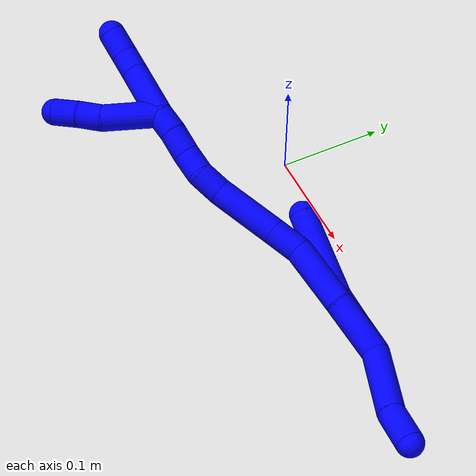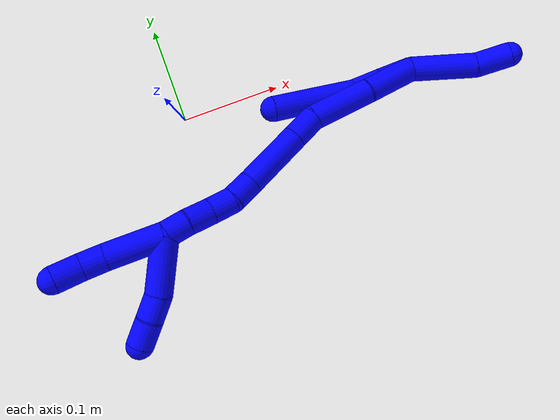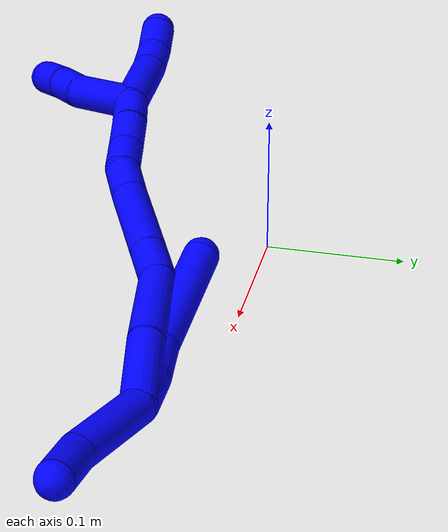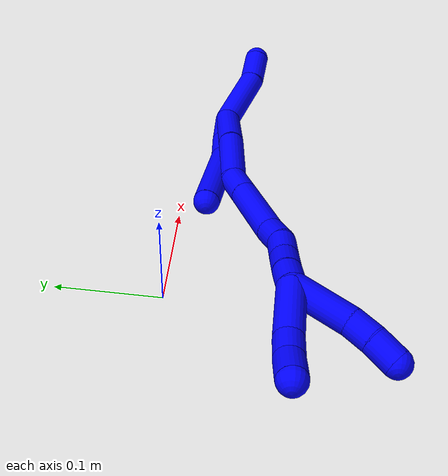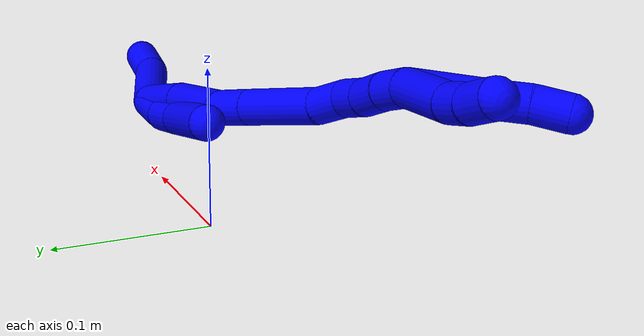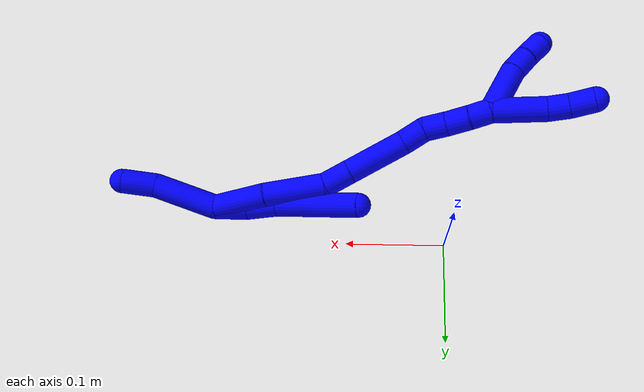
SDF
<sdf version="1.7">
 <world name="default">
  <plugin name="TubeGeneratorPlugin" filename="libtube_generator_plugin.so"/>
  <model name="photoneo_s_sensor">
   <static>1</static>
   <pose>0 0 2 1.57079 1.57079 3.14159</pose>
   <link name="link">
    <inertial><mass>0.1</mass></inertial>
    <sensor name="sensor" type="depth">
     <update_rate>30</update_rate>
     <camera>
      <horizontal_fov>1.22</horizontal_fov>
      <image><width>1920</width><height>1200</height><format>B8G8R8</format></image>
      <clip><near>0.1</near><far>4</far></clip>
      <depth_camera><output>points</output></depth_camera>
     </camera>
     <plugin name="camera_plugin" filename="libgazebo_ros_depth_camera.so">
      <baseline>0.2</baseline>
      <alwaysOn>1</alwaysOn>
      <updateRate>0.0</updateRate>
      <cameraName>camera_ir</cameraName>
      <imageTopicName>/camera/color/image_raw</imageTopicName>
      <cameraInfoTopicName>/camera/color/camera_info</cameraInfoTopicName>
      <depthImageTopicName>/camera/depth/image_raw</depthImageTopicName>
      <depthImageCameraInfoTopicName>/camera/depth/camera_info</depthImageCameraInfoTopicName>
      <pointCloudTopicName>/camera/depth/points</pointCloudTopicName>
      <frameName>fr_optical</frameName>
      <pointCloudCutoff>0.1</pointCloudCutoff>
      <pointCloudCutoffMax>2.0</pointCloudCutoffMax>
      <distortionK1>0</distortionK1>
      <distortionK2>0</distortionK2>
      <distortionK3>0</distortionK3>
      <distortionT1>0</distortionT1>
      <distortionT2>0</distortionT2>
      <CxPrime>0</CxPrime>
      <Cx>0</Cx>
      <Cy>0</Cy>
      <focalLength>0</focalLength>
      <hackBaseline>0</hackBaseline>
     </plugin>
    </sensor>
   </link>
  </model>
  <gravity>0 0 -9.8</gravity>
  <magnetic_field>6e-06 2.3e-05 -4.2e-05</magnetic_field>
  <atmosphere type="adiabatic"/>
  <physics name="default_physics" default="0" type="ode">
   <max_step_size>0.003</max_step_size>
   <real_time_factor>1</real_time_factor>
   <real_time_update_rate>1000</real_time_update_rate>
   <max_contacts>10000</max_contacts>
   <ode>
    <solver>
     <type>quick</type>
     <iters>100</iters>
     <sor>1.3</sor>
     <use_dynamic_moi_rescaling>0</use_dynamic_moi_rescaling>
    </solver>
    <constraints>
     <contact_max_correcting_vel>0</contact_max_correcting_vel>
     <contact_surface_layer>0.001</contact_surface_layer>
     <cfm>0</cfm>
     <erp>0.2</erp>
    </constraints>
   </ode>
  </physics>
  <scene><ambient>0.4 0.4 0.4 1</ambient><background>0.7 0.7 0.7 1</background><shadows>0</shadows></scene>
  <audio><device>default</device></audio>
  <spherical_coordinates>
   <surface_model>EARTH_WGS84</surface_model>
   <latitude_deg>0</latitude_deg>
   <longitude_deg>0</longitude_deg>
   <elevation>0</elevation>
   <heading_deg>0</heading_deg>
  </spherical_coordinates>
  <model name="bin">
   <static>1</static>
   <link name="bottom">
    <collision name="collision-bottom">
     <pose>0 0 -0.01 0 -0 0</pose>
     <geometry><box><size>0.8 0.6 0.02</size></box></geometry>
     <surface>
      <friction><ode><mu>100</mu><mu2>100</mu2></ode></friction>
      <contact><collide_bitmask>65535</collide_bitmask></contact>
     </surface>
    </collision>
   </link>
   <link name="west_wall">
    <collision name="collision-west_wall">
     <pose>-0.41 0 0.1 0 -0 0</pose>
     <geometry><box><size>0.02 0.6 0.2</size></box></geometry>
     <surface>
      <friction><ode><mu>100</mu><mu2>100</mu2></ode></friction>
      <contact><collide_bitmask>65535</collide_bitmask></contact>
     </surface>
    </collision>
   </link>
   <link name="east_wall">
    <collision name="collision-east_wall">
     <pose>0.41 0 0.1 0 -0 0</pose>
     <geometry><box><size>0.02 0.6 0.2</size></box></geometry>
     <surface>
      <friction><ode><mu>100</mu><mu2>100</mu2></ode></friction>
      <contact><collide_bitmask>65535</collide_bitmask></contact>
     </surface>
    </collision>
   </link>
   <link name="south_wall">
    <collision name="collision-south_wall">
     <pose>0 -0.31 0.1 0 -0 0</pose>
     <geometry><box><size>0.8 0.02 0.2</size></box></geometry>
     <surface>
      <friction><ode><mu>100</mu><mu2>100</mu2></ode></friction>
      <contact><collide_bitmask>65535</collide_bitmask></contact>
     </surface>
    </collision>
   </link>
   <link name="north_wall">
    <collision name="collision-north_wall">
     <pose>0 0.31 0.1 0 -0 0</pose>
     <geometry><box><size>0.8 0.02 0.2</size></box></geometry>
     <surface>
      <friction><ode><mu>100</mu><mu2>100</mu2></ode></friction>
      <contact><collide_bitmask>65535</collide_bitmask></contact>
     </surface>
    </collision>
   </link>
  </model>
  <model name="1">
   <static>0</static>
   <link name="1">
    <collision name="collision-cylinder-e_1_2_8">
     <pose>0.000954 -0.00063 -0.01635 3.10307 0.058241 1.97291</pose>
     <geometry><cylinder><radius>0.0125</radius><length>0.032779</length></cylinder></geometry>
     <surface>
      <friction><ode><mu>1.16</mu><mu2>1.16</mu2><slip1>0</slip1><slip2>0</slip2></ode></friction>
      <contact><ode><kp>1e+06</kp><kd>1</kd><max_vel>0</max_vel><min_depth>0.001</min_depth></ode></contact>
     </surface>
    </collision>
    <visual name="visual-cylinder-e_1_2_8">
     <pose>0.000954 -0.00063 -0.01635 3.10307 0.058241 1.97291</pose>
     <geometry><cylinder><radius>0.0125</radius><length>0.032779</length></cylinder></geometry>
     <material><ambient>0 0 1 1</ambient></material>
    </visual>
    <collision name="collision-cylinder-e_2_8_9">
     <pose>0.000517 0.00036 -0.048124 -3.03693 -0.089416 1.41377</pose>
     <geometry><cylinder><radius>0.0125</radius><length>0.031143</length></cylinder></geometry>
     <surface>
      <friction><ode><mu>1.16</mu><mu2>1.16</mu2><slip1>0</slip1><slip2>0</slip2></ode></friction>
      <contact><ode><kp>1e+06</kp><kd>1</kd><max_vel>0</max_vel><min_depth>0.001</min_depth></ode></contact>
     </surface>
    </collision>
    <visual name="visual-cylinder-e_2_8_9">
     <pose>0.000517 0.00036 -0.048124 -3.03693 -0.089416 1.41377</pose>
     <geometry><cylinder><radius>0.0125</radius><length>0.031143</length></cylinder></geometry>
     <material><ambient>0 0 1 1</ambient></material>
    </visual>
    <collision name="collision-cylinder-e_3_9_6">
     <pose>-0.000391 0.012539 -0.105269 -2.89373 0.011198 -0.089831</pose>
     <geometry><cylinder><radius>0.0125</radius><length>0.086078</length></cylinder></geometry>
     <surface>
      <friction><ode><mu>1.16</mu><mu2>1.16</mu2><slip1>0</slip1><slip2>0</slip2></ode></friction>
      <contact><ode><kp>1e+06</kp><kd>1</kd><max_vel>0</max_vel><min_depth>0.001</min_depth></ode></contact>
     </surface>
    </collision>
    <visual name="visual-cylinder-e_3_9_6">
     <pose>-0.000391 0.012539 -0.105269 -2.89373 0.011198 -0.089831</pose>
     <geometry><cylinder><radius>0.0125</radius><length>0.086078</length></cylinder></geometry>
     <material><ambient>0 0 1 1</ambient></material>
    </visual>
    <collision name="collision-cylinder-e_1_2_10">
     <pose>-0.011989 -0.002285 0.030453 0.074899 -0.374112 -0.014183</pose>
     <geometry><cylinder><radius>0.0125</radius><length>0.065615</length></cylinder></geometry>
     <surface>
      <friction><ode><mu>1.16</mu><mu2>1.16</mu2><slip1>0</slip1><slip2>0</slip2></ode></friction>
      <contact><ode><kp>1e+06</kp><kd>1</kd><max_vel>0</max_vel><min_depth>0.001</min_depth></ode></contact>
     </surface>
    </collision>
    <visual name="visual-cylinder-e_1_2_10">
     <pose>-0.011989 -0.002285 0.030453 0.074899 -0.374112 -0.014183</pose>
     <geometry><cylinder><radius>0.0125</radius><length>0.065615</length></cylinder></geometry>
     <material><ambient>0 0 1 1</ambient></material>
    </visual>
    <collision name="collision-cylinder-e_2_10_5">
     <pose>-0.027182 -0.002819 0.077706 -0.103861 -0.187399 0.009769</pose>
     <geometry><cylinder><radius>0.0125</radius><length>0.034385</length></cylinder></geometry>
     <surface>
      <friction><ode><mu>1.16</mu><mu2>1.16</mu2><slip1>0</slip1><slip2>0</slip2></ode></friction>
      <contact><ode><kp>1e+06</kp><kd>1</kd><max_vel>0</max_vel><min_depth>0.001</min_depth></ode></contact>
     </surface>
    </collision>
    <visual name="visual-cylinder-e_2_10_5">
     <pose>-0.027182 -0.002819 0.077706 -0.103861 -0.187399 0.009769</pose>
     <geometry><cylinder><radius>0.0125</radius><length>0.034385</length></cylinder></geometry>
     <material><ambient>0 0 1 1</ambient></material>
    </visual>
    <collision name="collision-cylinder-e_1_2_11">
     <pose>-0.00582 0.003915 -0.026262 -2.9936 -0.215783 1.94118</pose>
     <geometry><cylinder><radius>0.0125</radius><length>0.054365</length></cylinder></geometry>
     <surface>
      <friction><ode><mu>1.16</mu><mu2>1.16</mu2><slip1>0</slip1><slip2>0</slip2></ode></friction>
      <contact><ode><kp>1e+06</kp><kd>1</kd><max_vel>0</max_vel><min_depth>0.001</min_depth></ode></contact>
     </surface>
    </collision>
    <visual name="visual-cylinder-e_1_2_11">
     <pose>-0.00582 0.003915 -0.026262 -2.9936 -0.215783 1.94118</pose>
     <geometry><cylinder><radius>0.0125</radius><length>0.054365</length></cylinder></geometry>
     <material><ambient>0 0 1 1</ambient></material>
    </visual>
    <collision name="collision-cylinder-e_2_11_12">
     <pose>-0.015819 0.009716 -0.083142 -3.08008 -0.135402 2.28964</pose>
     <geometry><cylinder><radius>0.0125</radius><length>0.061918</length></cylinder></geometry>
     <surface>
      <friction><ode><mu>1.16</mu><mu2>1.16</mu2><slip1>0</slip1><slip2>0</slip2></ode></friction>
      <contact><ode><kp>1e+06</kp><kd>1</kd><max_vel>0</max_vel><min_depth>0.001</min_depth></ode></contact>
     </surface>
    </collision>
    <visual name="visual-cylinder-e_2_11_12">
     <pose>-0.015819 0.009716 -0.083142 -3.08008 -0.135402 2.28964</pose>
     <geometry><cylinder><radius>0.0125</radius><length>0.061918</length></cylinder></geometry>
     <material><ambient>0 0 1 1</ambient></material>
    </visual>
    <collision name="collision-cylinder-e_3_12_13">
     <pose>-0.026281 0.011031 -0.126501 3.09676 -0.457695 -2.9497</pose>
     <geometry><cylinder><radius>0.0125</radius><length>0.028435</length></cylinder></geometry>
     <surface>
      <friction><ode><mu>1.16</mu><mu2>1.16</mu2><slip1>0</slip1><slip2>0</slip2></ode></friction>
      <contact><ode><kp>1e+06</kp><kd>1</kd><max_vel>0</max_vel><min_depth>0.001</min_depth></ode></contact>
     </surface>
    </collision>
    <visual name="visual-cylinder-e_3_12_13">
     <pose>-0.026281 0.011031 -0.126501 3.09676 -0.457695 -2.9497</pose>
     <geometry><cylinder><radius>0.0125</radius><length>0.028435</length></cylinder></geometry>
     <material><ambient>0 0 1 1</ambient></material>
    </visual>
    <collision name="collision-cylinder-e_4_13_14">
     <pose>-0.046221 0.008956 -0.167072 3.08765 -0.455655 -2.90991</pose>
     <geometry><cylinder><radius>0.0125</radius><length>0.062073</length></cylinder></geometry>
     <surface>
      <friction><ode><mu>1.16</mu><mu2>1.16</mu2><slip1>0</slip1><slip2>0</slip2></ode></friction>
      <contact><ode><kp>1e+06</kp><kd>1</kd><max_vel>0</max_vel><min_depth>0.001</min_depth></ode></contact>
     </surface>
    </collision>
    <visual name="visual-cylinder-e_4_13_14">
     <pose>-0.046221 0.008956 -0.167072 3.08765 -0.455655 -2.90991</pose>
     <geometry><cylinder><radius>0.0125</radius><length>0.062073</length></cylinder></geometry>
     <material><ambient>0 0 1 1</ambient></material>
    </visual>
    <collision name="collision-cylinder-e_5_14_15">
     <pose>-0.066145 0.008979 -0.205281 -2.99569 -0.538368 2.62368</pose>
     <geometry><cylinder><radius>0.0125</radius><length>0.024441</length></cylinder></geometry>
     <surface>
      <friction><ode><mu>1.16</mu><mu2>1.16</mu2><slip1>0</slip1><slip2>0</slip2></ode></friction>
      <contact><ode><kp>1e+06</kp><kd>1</kd><max_vel>0</max_vel><min_depth>0.001</min_depth></ode></contact>
     </surface>
    </collision>
    <visual name="visual-cylinder-e_5_14_15">
     <pose>-0.066145 0.008979 -0.205281 -2.99569 -0.538368 2.62368</pose>
     <geometry><cylinder><radius>0.0125</radius><length>0.024441</length></cylinder></geometry>
     <material><ambient>0 0 1 1</ambient></material>
    </visual>
    <collision name="collision-cylinder-e_6_15_16">
     <pose>-0.074735 0.012284 -0.226759 -2.9826 -0.203967 1.81869</pose>
     <geometry><cylinder><radius>0.0125</radius><length>0.022953</length></cylinder></geometry>
     <surface>
      <friction><ode><mu>1.16</mu><mu2>1.16</mu2><slip1>0</slip1><slip2>0</slip2></ode></friction>
      <contact><ode><kp>1e+06</kp><kd>1</kd><max_vel>0</max_vel><min_depth>0.001</min_depth></ode></contact>
     </surface>
    </collision>
    <visual name="visual-cylinder-e_6_15_16">
     <pose>-0.074735 0.012284 -0.226759 -2.9826 -0.203967 1.81869</pose>
     <geometry><cylinder><radius>0.0125</radius><length>0.022953</length></cylinder></geometry>
     <material><ambient>0 0 1 1</ambient></material>
    </visual>
    <collision name="collision-cylinder-e_7_16_17">
     <pose>-0.080095 0.017443 -0.249109 -2.84978 -0.252756 1.42583</pose>
     <geometry><cylinder><radius>0.0125</radius><length>0.024271</length></cylinder></geometry>
     <surface>
      <friction><ode><mu>1.16</mu><mu2>1.16</mu2><slip1>0</slip1><slip2>0</slip2></ode></friction>
      <contact><ode><kp>1e+06</kp><kd>1</kd><max_vel>0</max_vel><min_depth>0.001</min_depth></ode></contact>
     </surface>
    </collision>
    <visual name="visual-cylinder-e_7_16_17">
     <pose>-0.080095 0.017443 -0.249109 -2.84978 -0.252756 1.42583</pose>
     <geometry><cylinder><radius>0.0125</radius><length>0.024271</length></cylinder></geometry>
     <material><ambient>0 0 1 1</ambient></material>
    </visual>
    <collision name="collision-cylinder-e_8_17_1">
     <pose>-0.0861 0.022703 -0.270544 -2.95906 -0.27939 1.98762</pose>
     <geometry><cylinder><radius>0.0125</radius><length>0.021544</length></cylinder></geometry>
     <surface>
      <friction><ode><mu>1.16</mu><mu2>1.16</mu2><slip1>0</slip1><slip2>0</slip2></ode></friction>
      <contact><ode><kp>1e+06</kp><kd>1</kd><max_vel>0</max_vel><min_depth>0.001</min_depth></ode></contact>
     </surface>
    </collision>
    <visual name="visual-cylinder-e_8_17_1">
     <pose>-0.0861 0.022703 -0.270544 -2.95906 -0.27939 1.98762</pose>
     <geometry><cylinder><radius>0.0125</radius><length>0.021544</length></cylinder></geometry>
     <material><ambient>0 0 1 1</ambient></material>
    </visual>
    <collision name="collision-cylinder-e_1_1_18">
     <pose>-0.107405 0.010255 -0.293631 2.30401 -0.760191 -1.46293</pose>
     <geometry><cylinder><radius>0.0125</radius><length>0.053216</length></cylinder></geometry>
     <surface>
      <friction><ode><mu>1.16</mu><mu2>1.16</mu2><slip1>0</slip1><slip2>0</slip2></ode></friction>
      <contact><ode><kp>1e+06</kp><kd>1</kd><max_vel>0</max_vel><min_depth>0.001</min_depth></ode></contact>
     </surface>
    </collision>
    <visual name="visual-cylinder-e_1_1_18">
     <pose>-0.107405 0.010255 -0.293631 2.30401 -0.760191 -1.46293</pose>
     <geometry><cylinder><radius>0.0125</radius><length>0.053216</length></cylinder></geometry>
     <material><ambient>0 0 1 1</ambient></material>
    </visual>
    <collision name="collision-cylinder-e_2_18_19">
     <pose>-0.132723 -0.008648 -0.3141 2.59761 -0.66869 -1.78863</pose>
     <geometry><cylinder><radius>0.0125</radius><length>0.022531</length></cylinder></geometry>
     <surface>
      <friction><ode><mu>1.16</mu><mu2>1.16</mu2><slip1>0</slip1><slip2>0</slip2></ode></friction>
      <contact><ode><kp>1e+06</kp><kd>1</kd><max_vel>0</max_vel><min_depth>0.001</min_depth></ode></contact>
     </surface>
    </collision>
    <visual name="visual-cylinder-e_2_18_19">
     <pose>-0.132723 -0.008648 -0.3141 2.59761 -0.66869 -1.78863</pose>
     <geometry><cylinder><radius>0.0125</radius><length>0.022531</length></cylinder></geometry>
     <material><ambient>0 0 1 1</ambient></material>
    </visual>
    <collision name="collision-cylinder-e_3_19_4">
     <pose>-0.146158 -0.019281 -0.329954 2.51051 -0.560857 -1.44588</pose>
     <geometry><cylinder><radius>0.0125</radius><length>0.024253</length></cylinder></geometry>
     <surface>
      <friction><ode><mu>1.16</mu><mu2>1.16</mu2><slip1>0</slip1><slip2>0</slip2></ode></friction>
      <contact><ode><kp>1e+06</kp><kd>1</kd><max_vel>0</max_vel><min_depth>0.001</min_depth></ode></contact>
     </surface>
    </collision>
    <visual name="visual-cylinder-e_3_19_4">
     <pose>-0.146158 -0.019281 -0.329954 2.51051 -0.560857 -1.44588</pose>
     <geometry><cylinder><radius>0.0125</radius><length>0.024253</length></cylinder></geometry>
     <material><ambient>0 0 1 1</ambient></material>
    </visual>
    <collision name="collision-cylinder-e_1_1_20">
     <pose>-0.088882 0.026354 -0.307326 -3.07508 0.007072 -0.211799</pose>
     <geometry><cylinder><radius>0.0125</radius><length>0.053319</length></cylinder></geometry>
     <surface>
      <friction><ode><mu>1.16</mu><mu2>1.16</mu2><slip1>0</slip1><slip2>0</slip2></ode></friction>
      <contact><ode><kp>1e+06</kp><kd>1</kd><max_vel>0</max_vel><min_depth>0.001</min_depth></ode></contact>
     </surface>
    </collision>
    <visual name="visual-cylinder-e_1_1_20">
     <pose>-0.088882 0.026354 -0.307326 -3.07508 0.007072 -0.211799</pose>
     <geometry><cylinder><radius>0.0125</radius><length>0.053319</length></cylinder></geometry>
     <material><ambient>0 0 1 1</ambient></material>
    </visual>
    <collision name="collision-cylinder-e_2_20_21">
     <pose>-0.089877 0.029942 -0.344529 -2.97199 -0.109566 1.14587</pose>
     <geometry><cylinder><radius>0.0125</radius><length>0.021645</length></cylinder></geometry>
     <surface>
      <friction><ode><mu>1.16</mu><mu2>1.16</mu2><slip1>0</slip1><slip2>0</slip2></ode></friction>
      <contact><ode><kp>1e+06</kp><kd>1</kd><max_vel>0</max_vel><min_depth>0.001</min_depth></ode></contact>
     </surface>
    </collision>
    <visual name="visual-cylinder-e_2_20_21">
     <pose>-0.089877 0.029942 -0.344529 -2.97199 -0.109566 1.14587</pose>
     <geometry><cylinder><radius>0.0125</radius><length>0.021645</length></cylinder></geometry>
     <material><ambient>0 0 1 1</ambient></material>
    </visual>
    <collision name="collision-cylinder-e_3_21_3">
     <pose>-0.093822 0.035028 -0.366895 -2.87046 -0.22246 1.37222</pose>
     <geometry><cylinder><radius>0.0125</radius><length>0.025037</length></cylinder></geometry>
     <surface>
      <friction><ode><mu>1.16</mu><mu2>1.16</mu2><slip1>0</slip1><slip2>0</slip2></ode></friction>
      <contact><ode><kp>1e+06</kp><kd>1</kd><max_vel>0</max_vel><min_depth>0.001</min_depth></ode></contact>
     </surface>
    </collision>
    <visual name="visual-cylinder-e_3_21_3">
     <pose>-0.093822 0.035028 -0.366895 -2.87046 -0.22246 1.37222</pose>
     <geometry><cylinder><radius>0.0125</radius><length>0.025037</length></cylinder></geometry>
     <material><ambient>0 0 1 1</ambient></material>
    </visual>
    <collision name="collision-sphere-3">
     <pose>-0.096584 0.038298 -0.378659 0 -0 0</pose>
     <geometry><sphere><radius>0.0125</radius></sphere></geometry>
     <surface>
      <friction><ode><mu>1.16</mu><mu2>1.16</mu2><slip1>0</slip1><slip2>0</slip2></ode></friction>
      <contact><ode><kp>1e+06</kp><kd>1</kd><max_vel>0</max_vel><min_depth>0.001</min_depth></ode></contact>
     </surface>
    </collision>
    <visual name="visual-sphere-3">
     <pose>-0.096584 0.038298 -0.378659 0 -0 0</pose>
     <geometry><sphere><radius>0.0125</radius></sphere></geometry>
     <material><ambient>0 0 1 1</ambient></material>
    </visual>
    <collision name="collision-sphere-21">
     <pose>-0.09106 0.031757 -0.355132 0 -0 0</pose>
     <geometry><sphere><radius>0.0125</radius></sphere></geometry>
     <surface>
      <friction><ode><mu>1.16</mu><mu2>1.16</mu2><slip1>0</slip1><slip2>0</slip2></ode></friction>
      <contact><ode><kp>1e+06</kp><kd>1</kd><max_vel>0</max_vel><min_depth>0.001</min_depth></ode></contact>
     </surface>
    </collision>
    <visual name="visual-sphere-21">
     <pose>-0.09106 0.031757 -0.355132 0 -0 0</pose>
     <geometry><sphere><radius>0.0125</radius></sphere></geometry>
     <material><ambient>0 0 1 1</ambient></material>
    </visual>
    <collision name="collision-sphere-20">
     <pose>-0.088693 0.028126 -0.333926 0 -0 0</pose>
     <geometry><sphere><radius>0.0125</radius></sphere></geometry>
     <surface>
      <friction><ode><mu>1.16</mu><mu2>1.16</mu2><slip1>0</slip1><slip2>0</slip2></ode></friction>
      <contact><ode><kp>1e+06</kp><kd>1</kd><max_vel>0</max_vel><min_depth>0.001</min_depth></ode></contact>
     </surface>
    </collision>
    <visual name="visual-sphere-20">
     <pose>-0.088693 0.028126 -0.333926 0 -0 0</pose>
     <geometry><sphere><radius>0.0125</radius></sphere></geometry>
     <material><ambient>0 0 1 1</ambient></material>
    </visual>
    <collision name="collision-sphere-4">
     <pose>-0.152608 -0.02534 -0.338245 0 -0 0</pose>
     <geometry><sphere><radius>0.0125</radius></sphere></geometry>
     <surface>
      <friction><ode><mu>1.16</mu><mu2>1.16</mu2><slip1>0</slip1><slip2>0</slip2></ode></friction>
      <contact><ode><kp>1e+06</kp><kd>1</kd><max_vel>0</max_vel><min_depth>0.001</min_depth></ode></contact>
     </surface>
    </collision>
    <visual name="visual-sphere-4">
     <pose>-0.152608 -0.02534 -0.338245 0 -0 0</pose>
     <geometry><sphere><radius>0.0125</radius></sphere></geometry>
     <material><ambient>0 0 1 1</ambient></material>
    </visual>
    <collision name="collision-sphere-5">
     <pose>-0.030385 -0.001068 0.094506 0 -0 0</pose>
     <geometry><sphere><radius>0.0125</radius></sphere></geometry>
     <surface>
      <friction><ode><mu>1.16</mu><mu2>1.16</mu2><slip1>0</slip1><slip2>0</slip2></ode></friction>
      <contact><ode><kp>1e+06</kp><kd>1</kd><max_vel>0</max_vel><min_depth>0.001</min_depth></ode></contact>
     </surface>
    </collision>
    <visual name="visual-sphere-5">
     <pose>-0.030385 -0.001068 0.094506 0 -0 0</pose>
     <geometry><sphere><radius>0.0125</radius></sphere></geometry>
     <material><ambient>0 0 1 1</ambient></material>
    </visual>
    <collision name="collision-sphere-10">
     <pose>-0.023979 -0.00457 0.060905 0 -0 0</pose>
     <geometry><sphere><radius>0.0125</radius></sphere></geometry>
     <surface>
      <friction><ode><mu>1.16</mu><mu2>1.16</mu2><slip1>0</slip1><slip2>0</slip2></ode></friction>
      <contact><ode><kp>1e+06</kp><kd>1</kd><max_vel>0</max_vel><min_depth>0.001</min_depth></ode></contact>
     </surface>
    </collision>
    <visual name="visual-sphere-10">
     <pose>-0.023979 -0.00457 0.060905 0 -0 0</pose>
     <geometry><sphere><radius>0.0125</radius></sphere></geometry>
     <material><ambient>0 0 1 1</ambient></material>
    </visual>
    <collision name="collision-sphere-6">
     <pose>9.1e-05 0.023097 -0.14699 0 -0 0</pose>
     <geometry><sphere><radius>0.0125</radius></sphere></geometry>
     <surface>
      <friction><ode><mu>1.16</mu><mu2>1.16</mu2><slip1>0</slip1><slip2>0</slip2></ode></friction>
      <contact><ode><kp>1e+06</kp><kd>1</kd><max_vel>0</max_vel><min_depth>0.001</min_depth></ode></contact>
     </surface>
    </collision>
    <visual name="visual-sphere-6">
     <pose>9.1e-05 0.023097 -0.14699 0 -0 0</pose>
     <geometry><sphere><radius>0.0125</radius></sphere></geometry>
     <material><ambient>0 0 1 1</ambient></material>
    </visual>
    <collision name="collision-sphere-9">
     <pose>-0.000873 0.00198 -0.063548 0 -0 0</pose>
     <geometry><sphere><radius>0.0125</radius></sphere></geometry>
     <surface>
      <friction><ode><mu>1.16</mu><mu2>1.16</mu2><slip1>0</slip1><slip2>0</slip2></ode></friction>
      <contact><ode><kp>1e+06</kp><kd>1</kd><max_vel>0</max_vel><min_depth>0.001</min_depth></ode></contact>
     </surface>
    </collision>
    <visual name="visual-sphere-9">
     <pose>-0.000873 0.00198 -0.063548 0 -0 0</pose>
     <geometry><sphere><radius>0.0125</radius></sphere></geometry>
     <material><ambient>0 0 1 1</ambient></material>
    </visual>
    <collision name="collision-sphere-2">
     <geometry><sphere><radius>0.0125</radius></sphere></geometry>
     <surface>
      <friction><ode><mu>1.16</mu><mu2>1.16</mu2><slip1>0</slip1><slip2>0</slip2></ode></friction>
      <contact><ode><kp>1e+06</kp><kd>1</kd><max_vel>0</max_vel><min_depth>0.001</min_depth></ode></contact>
     </surface>
    </collision>
    <visual name="visual-sphere-2">
     <geometry><sphere><radius>0.0125</radius></sphere></geometry>
     <material><ambient>0 0 1 1</ambient></material>
    </visual>
    <collision name="collision-sphere-19">
     <pose>-0.139708 -0.013223 -0.321663 0 -0 0</pose>
     <geometry><sphere><radius>0.0125</radius></sphere></geometry>
     <surface>
      <friction><ode><mu>1.16</mu><mu2>1.16</mu2><slip1>0</slip1><slip2>0</slip2></ode></friction>
      <contact><ode><kp>1e+06</kp><kd>1</kd><max_vel>0</max_vel><min_depth>0.001</min_depth></ode></contact>
     </surface>
    </collision>
    <visual name="visual-sphere-19">
     <pose>-0.139708 -0.013223 -0.321663 0 -0 0</pose>
     <geometry><sphere><radius>0.0125</radius></sphere></geometry>
     <material><ambient>0 0 1 1</ambient></material>
    </visual>
    <collision name="collision-sphere-8">
     <pose>0.001908 -0.00126 -0.032699 0 -0 0</pose>
     <geometry><sphere><radius>0.0125</radius></sphere></geometry>
     <surface>
      <friction><ode><mu>1.16</mu><mu2>1.16</mu2><slip1>0</slip1><slip2>0</slip2></ode></friction>
      <contact><ode><kp>1e+06</kp><kd>1</kd><max_vel>0</max_vel><min_depth>0.001</min_depth></ode></contact>
     </surface>
    </collision>
    <visual name="visual-sphere-8">
     <pose>0.001908 -0.00126 -0.032699 0 -0 0</pose>
     <geometry><sphere><radius>0.0125</radius></sphere></geometry>
     <material><ambient>0 0 1 1</ambient></material>
    </visual>
    <collision name="collision-sphere-11">
     <pose>-0.01164 0.007831 -0.052524 0 -0 0</pose>
     <geometry><sphere><radius>0.0125</radius></sphere></geometry>
     <surface>
      <friction><ode><mu>1.16</mu><mu2>1.16</mu2><slip1>0</slip1><slip2>0</slip2></ode></friction>
      <contact><ode><kp>1e+06</kp><kd>1</kd><max_vel>0</max_vel><min_depth>0.001</min_depth></ode></contact>
     </surface>
    </collision>
    <visual name="visual-sphere-11">
     <pose>-0.01164 0.007831 -0.052524 0 -0 0</pose>
     <geometry><sphere><radius>0.0125</radius></sphere></geometry>
     <material><ambient>0 0 1 1</ambient></material>
    </visual>
    <collision name="collision-sphere-12">
     <pose>-0.019999 0.011602 -0.113759 0 -0 0</pose>
     <geometry><sphere><radius>0.0125</radius></sphere></geometry>
     <surface>
      <friction><ode><mu>1.16</mu><mu2>1.16</mu2><slip1>0</slip1><slip2>0</slip2></ode></friction>
      <contact><ode><kp>1e+06</kp><kd>1</kd><max_vel>0</max_vel><min_depth>0.001</min_depth></ode></contact>
     </surface>
    </collision>
    <visual name="visual-sphere-12">
     <pose>-0.019999 0.011602 -0.113759 0 -0 0</pose>
     <geometry><sphere><radius>0.0125</radius></sphere></geometry>
     <material><ambient>0 0 1 1</ambient></material>
    </visual>
    <collision name="collision-sphere-13">
     <pose>-0.032564 0.010459 -0.139242 0 -0 0</pose>
     <geometry><sphere><radius>0.0125</radius></sphere></geometry>
     <surface>
      <friction><ode><mu>1.16</mu><mu2>1.16</mu2><slip1>0</slip1><slip2>0</slip2></ode></friction>
      <contact><ode><kp>1e+06</kp><kd>1</kd><max_vel>0</max_vel><min_depth>0.001</min_depth></ode></contact>
     </surface>
    </collision>
    <visual name="visual-sphere-13">
     <pose>-0.032564 0.010459 -0.139242 0 -0 0</pose>
     <geometry><sphere><radius>0.0125</radius></sphere></geometry>
     <material><ambient>0 0 1 1</ambient></material>
    </visual>
    <collision name="collision-sphere-14">
     <pose>-0.059879 0.007454 -0.194901 0 -0 0</pose>
     <geometry><sphere><radius>0.0125</radius></sphere></geometry>
     <surface>
      <friction><ode><mu>1.16</mu><mu2>1.16</mu2><slip1>0</slip1><slip2>0</slip2></ode></friction>
      <contact><ode><kp>1e+06</kp><kd>1</kd><max_vel>0</max_vel><min_depth>0.001</min_depth></ode></contact>
     </surface>
    </collision>
    <visual name="visual-sphere-14">
     <pose>-0.059879 0.007454 -0.194901 0 -0 0</pose>
     <geometry><sphere><radius>0.0125</radius></sphere></geometry>
     <material><ambient>0 0 1 1</ambient></material>
    </visual>
    <collision name="collision-sphere-15">
     <pose>-0.07241 0.010504 -0.215662 0 -0 0</pose>
     <geometry><sphere><radius>0.0125</radius></sphere></geometry>
     <surface>
      <friction><ode><mu>1.16</mu><mu2>1.16</mu2><slip1>0</slip1><slip2>0</slip2></ode></friction>
      <contact><ode><kp>1e+06</kp><kd>1</kd><max_vel>0</max_vel><min_depth>0.001</min_depth></ode></contact>
     </surface>
    </collision>
    <visual name="visual-sphere-15">
     <pose>-0.07241 0.010504 -0.215662 0 -0 0</pose>
     <geometry><sphere><radius>0.0125</radius></sphere></geometry>
     <material><ambient>0 0 1 1</ambient></material>
    </visual>
    <collision name="collision-sphere-16">
     <pose>-0.07706 0.014063 -0.237856 0 -0 0</pose>
     <geometry><sphere><radius>0.0125</radius></sphere></geometry>
     <surface>
      <friction><ode><mu>1.16</mu><mu2>1.16</mu2><slip1>0</slip1><slip2>0</slip2></ode></friction>
      <contact><ode><kp>1e+06</kp><kd>1</kd><max_vel>0</max_vel><min_depth>0.001</min_depth></ode></contact>
     </surface>
    </collision>
    <visual name="visual-sphere-16">
     <pose>-0.07706 0.014063 -0.237856 0 -0 0</pose>
     <geometry><sphere><radius>0.0125</radius></sphere></geometry>
     <material><ambient>0 0 1 1</ambient></material>
    </visual>
    <collision name="collision-sphere-17">
     <pose>-0.083129 0.020824 -0.260362 0 -0 0</pose>
     <geometry><sphere><radius>0.0125</radius></sphere></geometry>
     <surface>
      <friction><ode><mu>1.16</mu><mu2>1.16</mu2><slip1>0</slip1><slip2>0</slip2></ode></friction>
      <contact><ode><kp>1e+06</kp><kd>1</kd><max_vel>0</max_vel><min_depth>0.001</min_depth></ode></contact>
     </surface>
    </collision>
    <visual name="visual-sphere-17">
     <pose>-0.083129 0.020824 -0.260362 0 -0 0</pose>
     <geometry><sphere><radius>0.0125</radius></sphere></geometry>
     <material><ambient>0 0 1 1</ambient></material>
    </visual>
    <collision name="collision-sphere-1">
     <pose>-0.08907 0.024583 -0.280726 0 -0 0</pose>
     <geometry><sphere><radius>0.0125</radius></sphere></geometry>
     <surface>
      <friction><ode><mu>1.16</mu><mu2>1.16</mu2><slip1>0</slip1><slip2>0</slip2></ode></friction>
      <contact><ode><kp>1e+06</kp><kd>1</kd><max_vel>0</max_vel><min_depth>0.001</min_depth></ode></contact>
     </surface>
    </collision>
    <visual name="visual-sphere-1">
     <pose>-0.08907 0.024583 -0.280726 0 -0 0</pose>
     <geometry><sphere><radius>0.0125</radius></sphere></geometry>
     <material><ambient>0 0 1 1</ambient></material>
    </visual>
    <collision name="collision-sphere-18">
     <pose>-0.125739 -0.004073 -0.306537 0 -0 0</pose>
     <geometry><sphere><radius>0.0125</radius></sphere></geometry>
     <surface>
      <friction><ode><mu>1.16</mu><mu2>1.16</mu2><slip1>0</slip1><slip2>0</slip2></ode></friction>
      <contact><ode><kp>1e+06</kp><kd>1</kd><max_vel>0</max_vel><min_depth>0.001</min_depth></ode></contact>
     </surface>
    </collision>
    <visual name="visual-sphere-18">
     <pose>-0.125739 -0.004073 -0.306537 0 -0 0</pose>
     <geometry><sphere><radius>0.0125</radius></sphere></geometry>
     <material><ambient>0 0 1 1</ambient></material>
    </visual>
    <inertial>
     <pose>-0.046713 0.008979 -0.150401 0 -0 0</pose>
     <mass>0.75</mass>
     <inertia><ixx>6.2e-05</ixx><ixy>0</ixy><ixz>0</ixz><iyy>4e-05</iyy><iyz>0</iyz><izz>-4e-06</izz></inertia>
    </inertial>
   </link>
   <pose>0.234599 -0.033094 0.013465 1.60533 0.503927 1.63346</pose>
  </model>
 </world>
</sdf>
